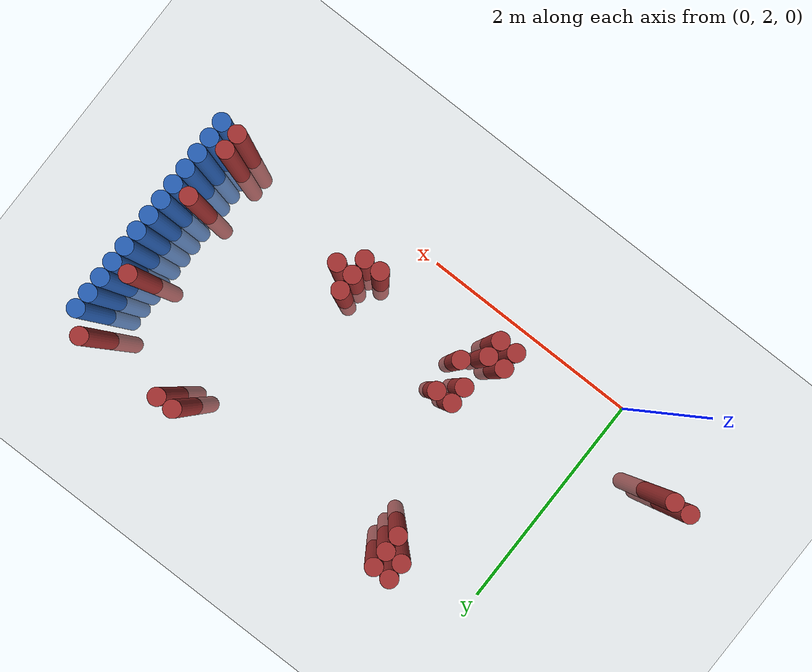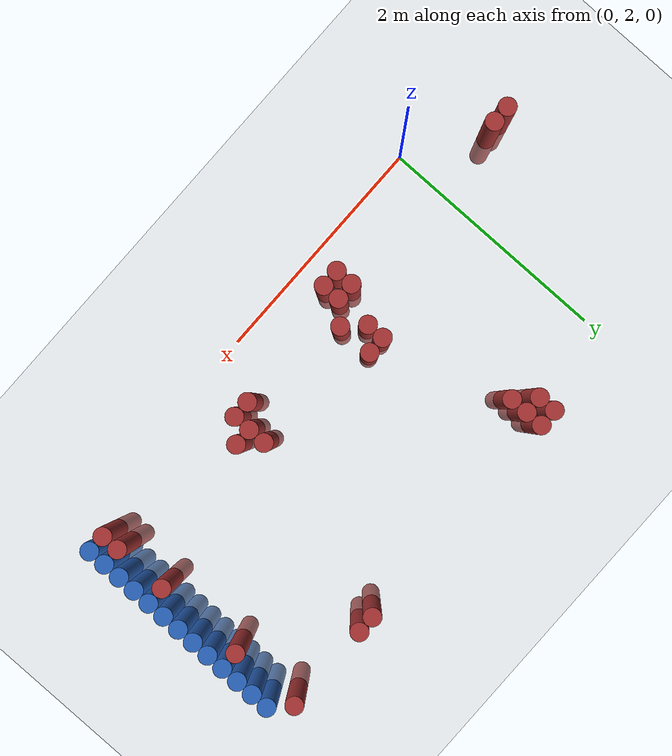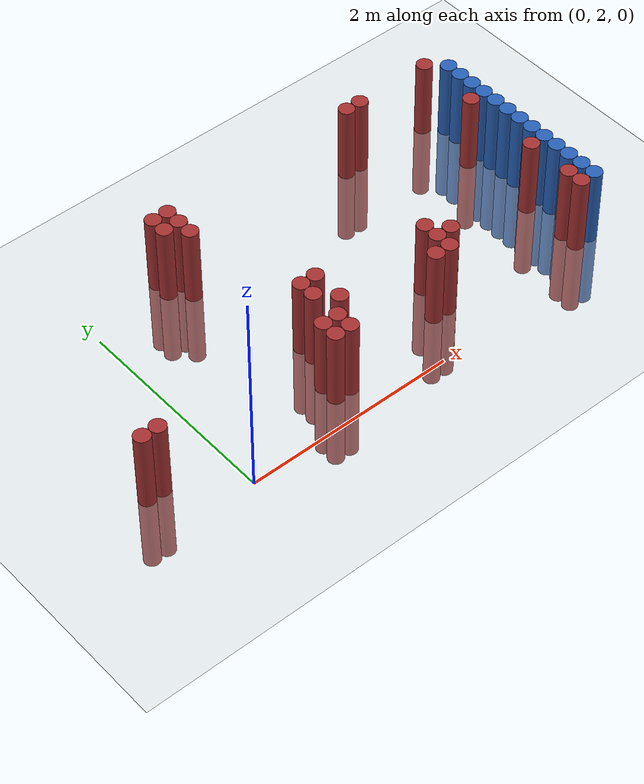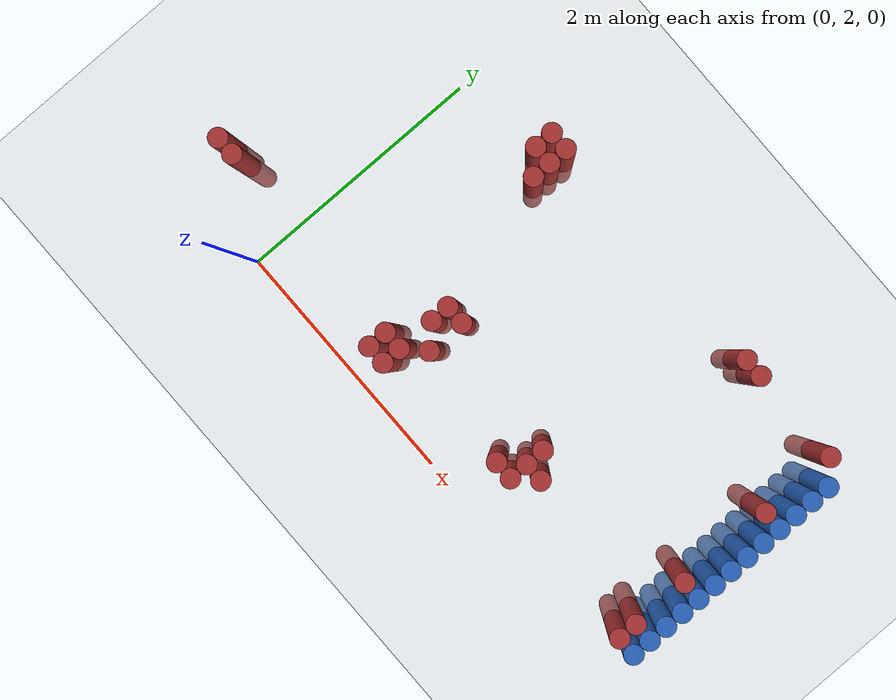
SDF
<sdf version="1.6">
 <world name="default">
  <model name="ground_plane">
   <static>1</static>
   <link name="link">
    <collision name="collision">
     <geometry><plane><normal>0 0 1</normal><size>100 100</size></plane></geometry>
     <surface><friction><ode><mu>100</mu><mu2>50</mu2></ode></friction></surface>
    </collision>
    <visual name="visual">
     <cast_shadows>0</cast_shadows>
     <geometry><plane><normal>0 0 1</normal><size>100 100</size></plane></geometry>
     <material>
      <script><uri>file://media/materials/scripts/gazebo.material</uri><name>Gazebo/Grey</name></script>
     </material>
    </visual>
   </link>
  </model>
  <model name="unit_cylinder_144">
   <static>1</static>
   <pose>3.925000 2.275000 0.000000 0.000000 0.000000 0.000000</pose>
   <link name="link">
    <inertial>
     <mass>1</mass>
     <inertia><ixx>0.145833</ixx><ixy>0</ixy><ixz>0</ixz><iyy>0.145833</iyy><iyz>0</iyz><izz>0.125</izz></inertia>
    </inertial>
    <collision name="collision">
     <geometry><cylinder><radius>0.075000</radius><length>1.5</length></cylinder></geometry>
    </collision>
    <visual name="visual">
     <geometry><cylinder><radius>0.075000</radius><length>1.5</length></cylinder></geometry>
     <material>
      <ambient>0.152000 0.379000 0.720000 1</ambient>
      <diffuse>0.152000 0.379000 0.720000 1</diffuse>
     </material>
     <material>
      <script><name>Gazebo/Grey</name><uri>file://media/materials/scripts/gazebo.material</uri></script>
     </material>
    </visual>
   </link>
  </model>
  <model name="unit_cylinder_146">
   <static>1</static>
   <pose>3.925000 2.425000 0.000000 0.000000 0.000000 0.000000</pose>
   <link name="link">
    <inertial>
     <mass>1</mass>
     <inertia><ixx>0.145833</ixx><ixy>0</ixy><ixz>0</ixz><iyy>0.145833</iyy><iyz>0</iyz><izz>0.125</izz></inertia>
    </inertial>
    <collision name="collision">
     <geometry><cylinder><radius>0.075000</radius><length>1.5</length></cylinder></geometry>
    </collision>
    <visual name="visual">
     <geometry><cylinder><radius>0.075000</radius><length>1.5</length></cylinder></geometry>
     <material>
      <ambient>0.152000 0.379000 0.720000 1</ambient>
      <diffuse>0.152000 0.379000 0.720000 1</diffuse>
     </material>
     <material>
      <script><name>Gazebo/Grey</name><uri>file://media/materials/scripts/gazebo.material</uri></script>
     </material>
    </visual>
   </link>
  </model>
  <model name="unit_cylinder_148">
   <static>1</static>
   <pose>3.925000 2.575000 0.000000 0.000000 0.000000 0.000000</pose>
   <link name="link">
    <inertial>
     <mass>1</mass>
     <inertia><ixx>0.145833</ixx><ixy>0</ixy><ixz>0</ixz><iyy>0.145833</iyy><iyz>0</iyz><izz>0.125</izz></inertia>
    </inertial>
    <collision name="collision">
     <geometry><cylinder><radius>0.075000</radius><length>1.5</length></cylinder></geometry>
    </collision>
    <visual name="visual">
     <geometry><cylinder><radius>0.075000</radius><length>1.5</length></cylinder></geometry>
     <material>
      <ambient>0.152000 0.379000 0.720000 1</ambient>
      <diffuse>0.152000 0.379000 0.720000 1</diffuse>
     </material>
     <material>
      <script><name>Gazebo/Grey</name><uri>file://media/materials/scripts/gazebo.material</uri></script>
     </material>
    </visual>
   </link>
  </model>
  <model name="unit_cylinder_150">
   <static>1</static>
   <pose>3.925000 2.725000 0.000000 0.000000 0.000000 0.000000</pose>
   <link name="link">
    <inertial>
     <mass>1</mass>
     <inertia><ixx>0.145833</ixx><ixy>0</ixy><ixz>0</ixz><iyy>0.145833</iyy><iyz>0</iyz><izz>0.125</izz></inertia>
    </inertial>
    <collision name="collision">
     <geometry><cylinder><radius>0.075000</radius><length>1.5</length></cylinder></geometry>
    </collision>
    <visual name="visual">
     <geometry><cylinder><radius>0.075000</radius><length>1.5</length></cylinder></geometry>
     <material>
      <ambient>0.152000 0.379000 0.720000 1</ambient>
      <diffuse>0.152000 0.379000 0.720000 1</diffuse>
     </material>
     <material>
      <script><name>Gazebo/Grey</name><uri>file://media/materials/scripts/gazebo.material</uri></script>
     </material>
    </visual>
   </link>
  </model>
  <model name="unit_cylinder_152">
   <static>1</static>
   <pose>3.925000 2.875000 0.000000 0.000000 0.000000 0.000000</pose>
   <link name="link">
    <inertial>
     <mass>1</mass>
     <inertia><ixx>0.145833</ixx><ixy>0</ixy><ixz>0</ixz><iyy>0.145833</iyy><iyz>0</iyz><izz>0.125</izz></inertia>
    </inertial>
    <collision name="collision">
     <geometry><cylinder><radius>0.075000</radius><length>1.5</length></cylinder></geometry>
    </collision>
    <visual name="visual">
     <geometry><cylinder><radius>0.075000</radius><length>1.5</length></cylinder></geometry>
     <material>
      <ambient>0.152000 0.379000 0.720000 1</ambient>
      <diffuse>0.152000 0.379000 0.720000 1</diffuse>
     </material>
     <material>
      <script><name>Gazebo/Grey</name><uri>file://media/materials/scripts/gazebo.material</uri></script>
     </material>
    </visual>
   </link>
  </model>
  <model name="unit_cylinder_154">
   <static>1</static>
   <pose>3.925000 3.025000 0.000000 0.000000 0.000000 0.000000</pose>
   <link name="link">
    <inertial>
     <mass>1</mass>
     <inertia><ixx>0.145833</ixx><ixy>0</ixy><ixz>0</ixz><iyy>0.145833</iyy><iyz>0</iyz><izz>0.125</izz></inertia>
    </inertial>
    <collision name="collision">
     <geometry><cylinder><radius>0.075000</radius><length>1.5</length></cylinder></geometry>
    </collision>
    <visual name="visual">
     <geometry><cylinder><radius>0.075000</radius><length>1.5</length></cylinder></geometry>
     <material>
      <ambient>0.152000 0.379000 0.720000 1</ambient>
      <diffuse>0.152000 0.379000 0.720000 1</diffuse>
     </material>
     <material>
      <script><name>Gazebo/Grey</name><uri>file://media/materials/scripts/gazebo.material</uri></script>
     </material>
    </visual>
   </link>
  </model>
  <model name="unit_cylinder_156">
   <static>1</static>
   <pose>3.925000 3.175000 0.000000 0.000000 0.000000 0.000000</pose>
   <link name="link">
    <inertial>
     <mass>1</mass>
     <inertia><ixx>0.145833</ixx><ixy>0</ixy><ixz>0</ixz><iyy>0.145833</iyy><iyz>0</iyz><izz>0.125</izz></inertia>
    </inertial>
    <collision name="collision">
     <geometry><cylinder><radius>0.075000</radius><length>1.5</length></cylinder></geometry>
    </collision>
    <visual name="visual">
     <geometry><cylinder><radius>0.075000</radius><length>1.5</length></cylinder></geometry>
     <material>
      <ambient>0.152000 0.379000 0.720000 1</ambient>
      <diffuse>0.152000 0.379000 0.720000 1</diffuse>
     </material>
     <material>
      <script><name>Gazebo/Grey</name><uri>file://media/materials/scripts/gazebo.material</uri></script>
     </material>
    </visual>
   </link>
  </model>
  <model name="unit_cylinder_158">
   <static>1</static>
   <pose>3.925000 3.325000 0.000000 0.000000 0.000000 0.000000</pose>
   <link name="link">
    <inertial>
     <mass>1</mass>
     <inertia><ixx>0.145833</ixx><ixy>0</ixy><ixz>0</ixz><iyy>0.145833</iyy><iyz>0</iyz><izz>0.125</izz></inertia>
    </inertial>
    <collision name="collision">
     <geometry><cylinder><radius>0.075000</radius><length>1.5</length></cylinder></geometry>
    </collision>
    <visual name="visual">
     <geometry><cylinder><radius>0.075000</radius><length>1.5</length></cylinder></geometry>
     <material>
      <ambient>0.152000 0.379000 0.720000 1</ambient>
      <diffuse>0.152000 0.379000 0.720000 1</diffuse>
     </material>
     <material>
      <script><name>Gazebo/Grey</name><uri>file://media/materials/scripts/gazebo.material</uri></script>
     </material>
    </visual>
   </link>
  </model>
  <model name="unit_cylinder_160">
   <static>1</static>
   <pose>3.925000 3.475000 0.000000 0.000000 0.000000 0.000000</pose>
   <link name="link">
    <inertial>
     <mass>1</mass>
     <inertia><ixx>0.145833</ixx><ixy>0</ixy><ixz>0</ixz><iyy>0.145833</iyy><iyz>0</iyz><izz>0.125</izz></inertia>
    </inertial>
    <collision name="collision">
     <geometry><cylinder><radius>0.075000</radius><length>1.5</length></cylinder></geometry>
    </collision>
    <visual name="visual">
     <geometry><cylinder><radius>0.075000</radius><length>1.5</length></cylinder></geometry>
     <material>
      <ambient>0.152000 0.379000 0.720000 1</ambient>
      <diffuse>0.152000 0.379000 0.720000 1</diffuse>
     </material>
     <material>
      <script><name>Gazebo/Grey</name><uri>file://media/materials/scripts/gazebo.material</uri></script>
     </material>
    </visual>
   </link>
  </model>
  <model name="unit_cylinder_162">
   <static>1</static>
   <pose>3.925000 3.625000 0.000000 0.000000 0.000000 0.000000</pose>
   <link name="link">
    <inertial>
     <mass>1</mass>
     <inertia><ixx>0.145833</ixx><ixy>0</ixy><ixz>0</ixz><iyy>0.145833</iyy><iyz>0</iyz><izz>0.125</izz></inertia>
    </inertial>
    <collision name="collision">
     <geometry><cylinder><radius>0.075000</radius><length>1.5</length></cylinder></geometry>
    </collision>
    <visual name="visual">
     <geometry><cylinder><radius>0.075000</radius><length>1.5</length></cylinder></geometry>
     <material>
      <ambient>0.152000 0.379000 0.720000 1</ambient>
      <diffuse>0.152000 0.379000 0.720000 1</diffuse>
     </material>
     <material>
      <script><name>Gazebo/Grey</name><uri>file://media/materials/scripts/gazebo.material</uri></script>
     </material>
    </visual>
   </link>
  </model>
  <model name="unit_cylinder_164">
   <static>1</static>
   <pose>3.925000 3.775000 0.000000 0.000000 0.000000 0.000000</pose>
   <link name="link">
    <inertial>
     <mass>1</mass>
     <inertia><ixx>0.145833</ixx><ixy>0</ixy><ixz>0</ixz><iyy>0.145833</iyy><iyz>0</iyz><izz>0.125</izz></inertia>
    </inertial>
    <collision name="collision">
     <geometry><cylinder><radius>0.075000</radius><length>1.5</length></cylinder></geometry>
    </collision>
    <visual name="visual">
     <geometry><cylinder><radius>0.075000</radius><length>1.5</length></cylinder></geometry>
     <material>
      <ambient>0.152000 0.379000 0.720000 1</ambient>
      <diffuse>0.152000 0.379000 0.720000 1</diffuse>
     </material>
     <material>
      <script><name>Gazebo/Grey</name><uri>file://media/materials/scripts/gazebo.material</uri></script>
     </material>
    </visual>
   </link>
  </model>
  <model name="unit_cylinder_166">
   <static>1</static>
   <pose>3.925000 3.925000 0.000000 0.000000 0.000000 0.000000</pose>
   <link name="link">
    <inertial>
     <mass>1</mass>
     <inertia><ixx>0.145833</ixx><ixy>0</ixy><ixz>0</ixz><iyy>0.145833</iyy><iyz>0</iyz><izz>0.125</izz></inertia>
    </inertial>
    <collision name="collision">
     <geometry><cylinder><radius>0.075000</radius><length>1.5</length></cylinder></geometry>
    </collision>
    <visual name="visual">
     <geometry><cylinder><radius>0.075000</radius><length>1.5</length></cylinder></geometry>
     <material>
      <ambient>0.152000 0.379000 0.720000 1</ambient>
      <diffuse>0.152000 0.379000 0.720000 1</diffuse>
     </material>
     <material>
      <script><name>Gazebo/Grey</name><uri>file://media/materials/scripts/gazebo.material</uri></script>
     </material>
    </visual>
   </link>
  </model>
  <model name="unit_cylinder_168">
   <static>1</static>
   <pose>3.925000 4.075000 0.000000 0.000000 0.000000 0.000000</pose>
   <link name="link">
    <inertial>
     <mass>1</mass>
     <inertia><ixx>0.145833</ixx><ixy>0</ixy><ixz>0</ixz><iyy>0.145833</iyy><iyz>0</iyz><izz>0.125</izz></inertia>
    </inertial>
    <collision name="collision">
     <geometry><cylinder><radius>0.075000</radius><length>1.5</length></cylinder></geometry>
    </collision>
    <visual name="visual">
     <geometry><cylinder><radius>0.075000</radius><length>1.5</length></cylinder></geometry>
     <material>
      <ambient>0.152000 0.379000 0.720000 1</ambient>
      <diffuse>0.152000 0.379000 0.720000 1</diffuse>
     </material>
     <material>
      <script><name>Gazebo/Grey</name><uri>file://media/materials/scripts/gazebo.material</uri></script>
     </material>
    </visual>
   </link>
  </model>
  <model name="unit_cylinder_328">
   <static>1</static>
   <pose>-0.725000 2.425000 0.000000 0.000000 0.000000 0.000000</pose>
   <link name="link">
    <inertial>
     <mass>1</mass>
     <inertia><ixx>0.145833</ixx><ixy>0</ixy><ixz>0</ixz><iyy>0.145833</iyy><iyz>0</iyz><izz>0.125</izz></inertia>
    </inertial>
    <collision name="collision">
     <geometry><cylinder><radius>0.075000</radius><length>1.5</length></cylinder></geometry>
    </collision>
    <visual name="visual">
     <geometry><cylinder><radius>0.075000</radius><length>1.5</length></cylinder></geometry>
     <material>
      <ambient>0.648000 0.192000 0.192000 1</ambient>
      <diffuse>0.648000 0.192000 0.192000 1</diffuse>
     </material>
     <material>
      <script><name>Gazebo/Grey</name><uri>file://media/materials/scripts/gazebo.material</uri></script>
     </material>
    </visual>
   </link>
  </model>
  <model name="unit_cylinder_336">
   <static>1</static>
   <pose>-0.575000 2.425000 0.000000 0.000000 0.000000 0.000000</pose>
   <link name="link">
    <inertial>
     <mass>1</mass>
     <inertia><ixx>0.145833</ixx><ixy>0</ixy><ixz>0</ixz><iyy>0.145833</iyy><iyz>0</iyz><izz>0.125</izz></inertia>
    </inertial>
    <collision name="collision">
     <geometry><cylinder><radius>0.075000</radius><length>1.5</length></cylinder></geometry>
    </collision>
    <visual name="visual">
     <geometry><cylinder><radius>0.075000</radius><length>1.5</length></cylinder></geometry>
     <material>
      <ambient>0.648000 0.192000 0.192000 1</ambient>
      <diffuse>0.648000 0.192000 0.192000 1</diffuse>
     </material>
     <material>
      <script><name>Gazebo/Grey</name><uri>file://media/materials/scripts/gazebo.material</uri></script>
     </material>
    </visual>
   </link>
  </model>
  <model name="unit_cylinder_380">
   <static>1</static>
   <pose>0.775000 4.075000 0.000000 0.000000 0.000000 0.000000</pose>
   <link name="link">
    <inertial>
     <mass>1</mass>
     <inertia><ixx>0.145833</ixx><ixy>0</ixy><ixz>0</ixz><iyy>0.145833</iyy><iyz>0</iyz><izz>0.125</izz></inertia>
    </inertial>
    <collision name="collision">
     <geometry><cylinder><radius>0.075000</radius><length>1.5</length></cylinder></geometry>
    </collision>
    <visual name="visual">
     <geometry><cylinder><radius>0.075000</radius><length>1.5</length></cylinder></geometry>
     <material>
      <ambient>0.648000 0.192000 0.192000 1</ambient>
      <diffuse>0.648000 0.192000 0.192000 1</diffuse>
     </material>
     <material>
      <script><name>Gazebo/Grey</name><uri>file://media/materials/scripts/gazebo.material</uri></script>
     </material>
    </visual>
   </link>
  </model>
  <model name="unit_cylinder_381">
   <static>1</static>
   <pose>0.775000 4.225000 0.000000 0.000000 0.000000 0.000000</pose>
   <link name="link">
    <inertial>
     <mass>1</mass>
     <inertia><ixx>0.145833</ixx><ixy>0</ixy><ixz>0</ixz><iyy>0.145833</iyy><iyz>0</iyz><izz>0.125</izz></inertia>
    </inertial>
    <collision name="collision">
     <geometry><cylinder><radius>0.075000</radius><length>1.5</length></cylinder></geometry>
    </collision>
    <visual name="visual">
     <geometry><cylinder><radius>0.075000</radius><length>1.5</length></cylinder></geometry>
     <material>
      <ambient>0.648000 0.192000 0.192000 1</ambient>
      <diffuse>0.648000 0.192000 0.192000 1</diffuse>
     </material>
     <material>
      <script><name>Gazebo/Grey</name><uri>file://media/materials/scripts/gazebo.material</uri></script>
     </material>
    </visual>
   </link>
  </model>
  <model name="unit_cylinder_388">
   <static>1</static>
   <pose>0.925000 3.925000 0.000000 0.000000 0.000000 0.000000</pose>
   <link name="link">
    <inertial>
     <mass>1</mass>
     <inertia><ixx>0.145833</ixx><ixy>0</ixy><ixz>0</ixz><iyy>0.145833</iyy><iyz>0</iyz><izz>0.125</izz></inertia>
    </inertial>
    <collision name="collision">
     <geometry><cylinder><radius>0.075000</radius><length>1.5</length></cylinder></geometry>
    </collision>
    <visual name="visual">
     <geometry><cylinder><radius>0.075000</radius><length>1.5</length></cylinder></geometry>
     <material>
      <ambient>0.648000 0.192000 0.192000 1</ambient>
      <diffuse>0.648000 0.192000 0.192000 1</diffuse>
     </material>
     <material>
      <script><name>Gazebo/Grey</name><uri>file://media/materials/scripts/gazebo.material</uri></script>
     </material>
    </visual>
   </link>
  </model>
  <model name="unit_cylinder_389">
   <static>1</static>
   <pose>0.925000 4.075000 0.000000 0.000000 0.000000 0.000000</pose>
   <link name="link">
    <inertial>
     <mass>1</mass>
     <inertia><ixx>0.145833</ixx><ixy>0</ixy><ixz>0</ixz><iyy>0.145833</iyy><iyz>0</iyz><izz>0.125</izz></inertia>
    </inertial>
    <collision name="collision">
     <geometry><cylinder><radius>0.075000</radius><length>1.5</length></cylinder></geometry>
    </collision>
    <visual name="visual">
     <geometry><cylinder><radius>0.075000</radius><length>1.5</length></cylinder></geometry>
     <material>
      <ambient>0.648000 0.192000 0.192000 1</ambient>
      <diffuse>0.648000 0.192000 0.192000 1</diffuse>
     </material>
     <material>
      <script><name>Gazebo/Grey</name><uri>file://media/materials/scripts/gazebo.material</uri></script>
     </material>
    </visual>
   </link>
  </model>
  <model name="unit_cylinder_390">
   <static>1</static>
   <pose>0.925000 4.225000 0.000000 0.000000 0.000000 0.000000</pose>
   <link name="link">
    <inertial>
     <mass>1</mass>
     <inertia><ixx>0.145833</ixx><ixy>0</ixy><ixz>0</ixz><iyy>0.145833</iyy><iyz>0</iyz><izz>0.125</izz></inertia>
    </inertial>
    <collision name="collision">
     <geometry><cylinder><radius>0.075000</radius><length>1.5</length></cylinder></geometry>
    </collision>
    <visual name="visual">
     <geometry><cylinder><radius>0.075000</radius><length>1.5</length></cylinder></geometry>
     <material>
      <ambient>0.648000 0.192000 0.192000 1</ambient>
      <diffuse>0.648000 0.192000 0.192000 1</diffuse>
     </material>
     <material>
      <script><name>Gazebo/Grey</name><uri>file://media/materials/scripts/gazebo.material</uri></script>
     </material>
    </visual>
   </link>
  </model>
  <model name="unit_cylinder_395">
   <static>1</static>
   <pose>1.075000 2.275000 0.000000 0.000000 0.000000 0.000000</pose>
   <link name="link">
    <inertial>
     <mass>1</mass>
     <inertia><ixx>0.145833</ixx><ixy>0</ixy><ixz>0</ixz><iyy>0.145833</iyy><iyz>0</iyz><izz>0.125</izz></inertia>
    </inertial>
    <collision name="collision">
     <geometry><cylinder><radius>0.075000</radius><length>1.5</length></cylinder></geometry>
    </collision>
    <visual name="visual">
     <geometry><cylinder><radius>0.075000</radius><length>1.5</length></cylinder></geometry>
     <material>
      <ambient>0.648000 0.192000 0.192000 1</ambient>
      <diffuse>0.648000 0.192000 0.192000 1</diffuse>
     </material>
     <material>
      <script><name>Gazebo/Grey</name><uri>file://media/materials/scripts/gazebo.material</uri></script>
     </material>
    </visual>
   </link>
  </model>
  <model name="unit_cylinder_396">
   <static>1</static>
   <pose>1.075000 2.425000 0.000000 0.000000 0.000000 0.000000</pose>
   <link name="link">
    <inertial>
     <mass>1</mass>
     <inertia><ixx>0.145833</ixx><ixy>0</ixy><ixz>0</ixz><iyy>0.145833</iyy><iyz>0</iyz><izz>0.125</izz></inertia>
    </inertial>
    <collision name="collision">
     <geometry><cylinder><radius>0.075000</radius><length>1.5</length></cylinder></geometry>
    </collision>
    <visual name="visual">
     <geometry><cylinder><radius>0.075000</radius><length>1.5</length></cylinder></geometry>
     <material>
      <ambient>0.648000 0.192000 0.192000 1</ambient>
      <diffuse>0.648000 0.192000 0.192000 1</diffuse>
     </material>
     <material>
      <script><name>Gazebo/Grey</name><uri>file://media/materials/scripts/gazebo.material</uri></script>
     </material>
    </visual>
   </link>
  </model>
  <model name="unit_cylinder_398">
   <static>1</static>
   <pose>1.225000 2.275000 0.000000 0.000000 0.000000 0.000000</pose>
   <link name="link">
    <inertial>
     <mass>1</mass>
     <inertia><ixx>0.145833</ixx><ixy>0</ixy><ixz>0</ixz><iyy>0.145833</iyy><iyz>0</iyz><izz>0.125</izz></inertia>
    </inertial>
    <collision name="collision">
     <geometry><cylinder><radius>0.075000</radius><length>1.5</length></cylinder></geometry>
    </collision>
    <visual name="visual">
     <geometry><cylinder><radius>0.075000</radius><length>1.5</length></cylinder></geometry>
     <material>
      <ambient>0.648000 0.192000 0.192000 1</ambient>
      <diffuse>0.648000 0.192000 0.192000 1</diffuse>
     </material>
     <material>
      <script><name>Gazebo/Grey</name><uri>file://media/materials/scripts/gazebo.material</uri></script>
     </material>
    </visual>
   </link>
  </model>
  <model name="unit_cylinder_399">
   <static>1</static>
   <pose>1.225000 2.425000 0.000000 0.000000 0.000000 0.000000</pose>
   <link name="link">
    <inertial>
     <mass>1</mass>
     <inertia><ixx>0.145833</ixx><ixy>0</ixy><ixz>0</ixz><iyy>0.145833</iyy><iyz>0</iyz><izz>0.125</izz></inertia>
    </inertial>
    <collision name="collision">
     <geometry><cylinder><radius>0.075000</radius><length>1.5</length></cylinder></geometry>
    </collision>
    <visual name="visual">
     <geometry><cylinder><radius>0.075000</radius><length>1.5</length></cylinder></geometry>
     <material>
      <ambient>0.648000 0.192000 0.192000 1</ambient>
      <diffuse>0.648000 0.192000 0.192000 1</diffuse>
     </material>
     <material>
      <script><name>Gazebo/Grey</name><uri>file://media/materials/scripts/gazebo.material</uri></script>
     </material>
    </visual>
   </link>
  </model>
  <model name="unit_cylinder_400">
   <static>1</static>
   <pose>1.225000 2.725000 0.000000 0.000000 0.000000 0.000000</pose>
   <link name="link">
    <inertial>
     <mass>1</mass>
     <inertia><ixx>0.145833</ixx><ixy>0</ixy><ixz>0</ixz><iyy>0.145833</iyy><iyz>0</iyz><izz>0.125</izz></inertia>
    </inertial>
    <collision name="collision">
     <geometry><cylinder><radius>0.075000</radius><length>1.5</length></cylinder></geometry>
    </collision>
    <visual name="visual">
     <geometry><cylinder><radius>0.075000</radius><length>1.5</length></cylinder></geometry>
     <material>
      <ambient>0.648000 0.192000 0.192000 1</ambient>
      <diffuse>0.648000 0.192000 0.192000 1</diffuse>
     </material>
     <material>
      <script><name>Gazebo/Grey</name><uri>file://media/materials/scripts/gazebo.material</uri></script>
     </material>
    </visual>
   </link>
  </model>
  <model name="unit_cylinder_401">
   <static>1</static>
   <pose>1.225000 2.875000 0.000000 0.000000 0.000000 0.000000</pose>
   <link name="link">
    <inertial>
     <mass>1</mass>
     <inertia><ixx>0.145833</ixx><ixy>0</ixy><ixz>0</ixz><iyy>0.145833</iyy><iyz>0</iyz><izz>0.125</izz></inertia>
    </inertial>
    <collision name="collision">
     <geometry><cylinder><radius>0.075000</radius><length>1.5</length></cylinder></geometry>
    </collision>
    <visual name="visual">
     <geometry><cylinder><radius>0.075000</radius><length>1.5</length></cylinder></geometry>
     <material>
      <ambient>0.648000 0.192000 0.192000 1</ambient>
      <diffuse>0.648000 0.192000 0.192000 1</diffuse>
     </material>
     <material>
      <script><name>Gazebo/Grey</name><uri>file://media/materials/scripts/gazebo.material</uri></script>
     </material>
    </visual>
   </link>
  </model>
  <model name="unit_cylinder_404">
   <static>1</static>
   <pose>1.375000 2.575000 0.000000 0.000000 0.000000 0.000000</pose>
   <link name="link">
    <inertial>
     <mass>1</mass>
     <inertia><ixx>0.145833</ixx><ixy>0</ixy><ixz>0</ixz><iyy>0.145833</iyy><iyz>0</iyz><izz>0.125</izz></inertia>
    </inertial>
    <collision name="collision">
     <geometry><cylinder><radius>0.075000</radius><length>1.5</length></cylinder></geometry>
    </collision>
    <visual name="visual">
     <geometry><cylinder><radius>0.075000</radius><length>1.5</length></cylinder></geometry>
     <material>
      <ambient>0.648000 0.192000 0.192000 1</ambient>
      <diffuse>0.648000 0.192000 0.192000 1</diffuse>
     </material>
     <material>
      <script><name>Gazebo/Grey</name><uri>file://media/materials/scripts/gazebo.material</uri></script>
     </material>
    </visual>
   </link>
  </model>
  <model name="unit_cylinder_405">
   <static>1</static>
   <pose>1.375000 2.875000 0.000000 0.000000 0.000000 0.000000</pose>
   <link name="link">
    <inertial>
     <mass>1</mass>
     <inertia><ixx>0.145833</ixx><ixy>0</ixy><ixz>0</ixz><iyy>0.145833</iyy><iyz>0</iyz><izz>0.125</izz></inertia>
    </inertial>
    <collision name="collision">
     <geometry><cylinder><radius>0.075000</radius><length>1.5</length></cylinder></geometry>
    </collision>
    <visual name="visual">
     <geometry><cylinder><radius>0.075000</radius><length>1.5</length></cylinder></geometry>
     <material>
      <ambient>0.648000 0.192000 0.192000 1</ambient>
      <diffuse>0.648000 0.192000 0.192000 1</diffuse>
     </material>
     <material>
      <script><name>Gazebo/Grey</name><uri>file://media/materials/scripts/gazebo.material</uri></script>
     </material>
    </visual>
   </link>
  </model>
  <model name="unit_cylinder_420">
   <static>1</static>
   <pose>2.275000 2.425000 0.000000 0.000000 0.000000 0.000000</pose>
   <link name="link">
    <inertial>
     <mass>1</mass>
     <inertia><ixx>0.145833</ixx><ixy>0</ixy><ixz>0</ixz><iyy>0.145833</iyy><iyz>0</iyz><izz>0.125</izz></inertia>
    </inertial>
    <collision name="collision">
     <geometry><cylinder><radius>0.075000</radius><length>1.5</length></cylinder></geometry>
    </collision>
    <visual name="visual">
     <geometry><cylinder><radius>0.075000</radius><length>1.5</length></cylinder></geometry>
     <material>
      <ambient>0.648000 0.192000 0.192000 1</ambient>
      <diffuse>0.648000 0.192000 0.192000 1</diffuse>
     </material>
     <material>
      <script><name>Gazebo/Grey</name><uri>file://media/materials/scripts/gazebo.material</uri></script>
     </material>
    </visual>
   </link>
  </model>
  <model name="unit_cylinder_423">
   <static>1</static>
   <pose>2.425000 2.425000 0.000000 0.000000 0.000000 0.000000</pose>
   <link name="link">
    <inertial>
     <mass>1</mass>
     <inertia><ixx>0.145833</ixx><ixy>0</ixy><ixz>0</ixz><iyy>0.145833</iyy><iyz>0</iyz><izz>0.125</izz></inertia>
    </inertial>
    <collision name="collision">
     <geometry><cylinder><radius>0.075000</radius><length>1.5</length></cylinder></geometry>
    </collision>
    <visual name="visual">
     <geometry><cylinder><radius>0.075000</radius><length>1.5</length></cylinder></geometry>
     <material>
      <ambient>0.648000 0.192000 0.192000 1</ambient>
      <diffuse>0.648000 0.192000 0.192000 1</diffuse>
     </material>
     <material>
      <script><name>Gazebo/Grey</name><uri>file://media/materials/scripts/gazebo.material</uri></script>
     </material>
    </visual>
   </link>
  </model>
  <model name="unit_cylinder_424">
   <static>1</static>
   <pose>2.425000 2.575000 0.000000 0.000000 0.000000 0.000000</pose>
   <link name="link">
    <inertial>
     <mass>1</mass>
     <inertia><ixx>0.145833</ixx><ixy>0</ixy><ixz>0</ixz><iyy>0.145833</iyy><iyz>0</iyz><izz>0.125</izz></inertia>
    </inertial>
    <collision name="collision">
     <geometry><cylinder><radius>0.075000</radius><length>1.5</length></cylinder></geometry>
    </collision>
    <visual name="visual">
     <geometry><cylinder><radius>0.075000</radius><length>1.5</length></cylinder></geometry>
     <material>
      <ambient>0.648000 0.192000 0.192000 1</ambient>
      <diffuse>0.648000 0.192000 0.192000 1</diffuse>
     </material>
     <material>
      <script><name>Gazebo/Grey</name><uri>file://media/materials/scripts/gazebo.material</uri></script>
     </material>
    </visual>
   </link>
  </model>
  <model name="unit_cylinder_425">
   <static>1</static>
   <pose>2.425000 2.725000 0.000000 0.000000 0.000000 0.000000</pose>
   <link name="link">
    <inertial>
     <mass>1</mass>
     <inertia><ixx>0.145833</ixx><ixy>0</ixy><ixz>0</ixz><iyy>0.145833</iyy><iyz>0</iyz><izz>0.125</izz></inertia>
    </inertial>
    <collision name="collision">
     <geometry><cylinder><radius>0.075000</radius><length>1.5</length></cylinder></geometry>
    </collision>
    <visual name="visual">
     <geometry><cylinder><radius>0.075000</radius><length>1.5</length></cylinder></geometry>
     <material>
      <ambient>0.648000 0.192000 0.192000 1</ambient>
      <diffuse>0.648000 0.192000 0.192000 1</diffuse>
     </material>
     <material>
      <script><name>Gazebo/Grey</name><uri>file://media/materials/scripts/gazebo.material</uri></script>
     </material>
    </visual>
   </link>
  </model>
  <model name="unit_cylinder_429">
   <static>1</static>
   <pose>2.575000 2.575000 0.000000 0.000000 0.000000 0.000000</pose>
   <link name="link">
    <inertial>
     <mass>1</mass>
     <inertia><ixx>0.145833</ixx><ixy>0</ixy><ixz>0</ixz><iyy>0.145833</iyy><iyz>0</iyz><izz>0.125</izz></inertia>
    </inertial>
    <collision name="collision">
     <geometry><cylinder><radius>0.075000</radius><length>1.5</length></cylinder></geometry>
    </collision>
    <visual name="visual">
     <geometry><cylinder><radius>0.075000</radius><length>1.5</length></cylinder></geometry>
     <material>
      <ambient>0.648000 0.192000 0.192000 1</ambient>
      <diffuse>0.648000 0.192000 0.192000 1</diffuse>
     </material>
     <material>
      <script><name>Gazebo/Grey</name><uri>file://media/materials/scripts/gazebo.material</uri></script>
     </material>
    </visual>
   </link>
  </model>
  <model name="unit_cylinder_436">
   <static>1</static>
   <pose>2.875000 4.225000 0.000000 0.000000 0.000000 0.000000</pose>
   <link name="link">
    <inertial>
     <mass>1</mass>
     <inertia><ixx>0.145833</ixx><ixy>0</ixy><ixz>0</ixz><iyy>0.145833</iyy><iyz>0</iyz><izz>0.125</izz></inertia>
    </inertial>
    <collision name="collision">
     <geometry><cylinder><radius>0.075000</radius><length>1.5</length></cylinder></geometry>
    </collision>
    <visual name="visual">
     <geometry><cylinder><radius>0.075000</radius><length>1.5</length></cylinder></geometry>
     <material>
      <ambient>0.648000 0.192000 0.192000 1</ambient>
      <diffuse>0.648000 0.192000 0.192000 1</diffuse>
     </material>
     <material>
      <script><name>Gazebo/Grey</name><uri>file://media/materials/scripts/gazebo.material</uri></script>
     </material>
    </visual>
   </link>
  </model>
  <model name="unit_cylinder_441">
   <static>1</static>
   <pose>3.025000 4.225000 0.000000 0.000000 0.000000 0.000000</pose>
   <link name="link">
    <inertial>
     <mass>1</mass>
     <inertia><ixx>0.145833</ixx><ixy>0</ixy><ixz>0</ixz><iyy>0.145833</iyy><iyz>0</iyz><izz>0.125</izz></inertia>
    </inertial>
    <collision name="collision">
     <geometry><cylinder><radius>0.075000</radius><length>1.5</length></cylinder></geometry>
    </collision>
    <visual name="visual">
     <geometry><cylinder><radius>0.075000</radius><length>1.5</length></cylinder></geometry>
     <material>
      <ambient>0.648000 0.192000 0.192000 1</ambient>
      <diffuse>0.648000 0.192000 0.192000 1</diffuse>
     </material>
     <material>
      <script><name>Gazebo/Grey</name><uri>file://media/materials/scripts/gazebo.material</uri></script>
     </material>
    </visual>
   </link>
  </model>
  <model name="unit_cylinder_479">
   <static>1</static>
   <pose>3.775000 2.275000 0.000000 0.000000 0.000000 0.000000</pose>
   <link name="link">
    <inertial>
     <mass>1</mass>
     <inertia><ixx>0.145833</ixx><ixy>0</ixy><ixz>0</ixz><iyy>0.145833</iyy><iyz>0</iyz><izz>0.125</izz></inertia>
    </inertial>
    <collision name="collision">
     <geometry><cylinder><radius>0.075000</radius><length>1.5</length></cylinder></geometry>
    </collision>
    <visual name="visual">
     <geometry><cylinder><radius>0.075000</radius><length>1.5</length></cylinder></geometry>
     <material>
      <ambient>0.648000 0.192000 0.192000 1</ambient>
      <diffuse>0.648000 0.192000 0.192000 1</diffuse>
     </material>
     <material>
      <script><name>Gazebo/Grey</name><uri>file://media/materials/scripts/gazebo.material</uri></script>
     </material>
    </visual>
   </link>
  </model>
  <model name="unit_cylinder_480">
   <static>1</static>
   <pose>3.775000 2.425000 0.000000 0.000000 0.000000 0.000000</pose>
   <link name="link">
    <inertial>
     <mass>1</mass>
     <inertia><ixx>0.145833</ixx><ixy>0</ixy><ixz>0</ixz><iyy>0.145833</iyy><iyz>0</iyz><izz>0.125</izz></inertia>
    </inertial>
    <collision name="collision">
     <geometry><cylinder><radius>0.075000</radius><length>1.5</length></cylinder></geometry>
    </collision>
    <visual name="visual">
     <geometry><cylinder><radius>0.075000</radius><length>1.5</length></cylinder></geometry>
     <material>
      <ambient>0.648000 0.192000 0.192000 1</ambient>
      <diffuse>0.648000 0.192000 0.192000 1</diffuse>
     </material>
     <material>
      <script><name>Gazebo/Grey</name><uri>file://media/materials/scripts/gazebo.material</uri></script>
     </material>
    </visual>
   </link>
  </model>
  <model name="unit_cylinder_481">
   <static>1</static>
   <pose>3.775000 2.875000 0.000000 0.000000 0.000000 0.000000</pose>
   <link name="link">
    <inertial>
     <mass>1</mass>
     <inertia><ixx>0.145833</ixx><ixy>0</ixy><ixz>0</ixz><iyy>0.145833</iyy><iyz>0</iyz><izz>0.125</izz></inertia>
    </inertial>
    <collision name="collision">
     <geometry><cylinder><radius>0.075000</radius><length>1.5</length></cylinder></geometry>
    </collision>
    <visual name="visual">
     <geometry><cylinder><radius>0.075000</radius><length>1.5</length></cylinder></geometry>
     <material>
      <ambient>0.648000 0.192000 0.192000 1</ambient>
      <diffuse>0.648000 0.192000 0.192000 1</diffuse>
     </material>
     <material>
      <script><name>Gazebo/Grey</name><uri>file://media/materials/scripts/gazebo.material</uri></script>
     </material>
    </visual>
   </link>
  </model>
  <model name="unit_cylinder_482">
   <static>1</static>
   <pose>3.775000 3.625000 0.000000 0.000000 0.000000 0.000000</pose>
   <link name="link">
    <inertial>
     <mass>1</mass>
     <inertia><ixx>0.145833</ixx><ixy>0</ixy><ixz>0</ixz><iyy>0.145833</iyy><iyz>0</iyz><izz>0.125</izz></inertia>
    </inertial>
    <collision name="collision">
     <geometry><cylinder><radius>0.075000</radius><length>1.5</length></cylinder></geometry>
    </collision>
    <visual name="visual">
     <geometry><cylinder><radius>0.075000</radius><length>1.5</length></cylinder></geometry>
     <material>
      <ambient>0.648000 0.192000 0.192000 1</ambient>
      <diffuse>0.648000 0.192000 0.192000 1</diffuse>
     </material>
     <material>
      <script><name>Gazebo/Grey</name><uri>file://media/materials/scripts/gazebo.material</uri></script>
     </material>
    </visual>
   </link>
  </model>
  <model name="unit_cylinder_483">
   <static>1</static>
   <pose>3.775000 4.225000 0.000000 0.000000 0.000000 0.000000</pose>
   <link name="link">
    <inertial>
     <mass>1</mass>
     <inertia><ixx>0.145833</ixx><ixy>0</ixy><ixz>0</ixz><iyy>0.145833</iyy><iyz>0</iyz><izz>0.125</izz></inertia>
    </inertial>
    <collision name="collision">
     <geometry><cylinder><radius>0.075000</radius><length>1.5</length></cylinder></geometry>
    </collision>
    <visual name="visual">
     <geometry><cylinder><radius>0.075000</radius><length>1.5</length></cylinder></geometry>
     <material>
      <ambient>0.648000 0.192000 0.192000 1</ambient>
      <diffuse>0.648000 0.192000 0.192000 1</diffuse>
     </material>
     <material>
      <script><name>Gazebo/Grey</name><uri>file://media/materials/scripts/gazebo.material</uri></script>
     </material>
    </visual>
   </link>
  </model>
  <model name="unit_cylinder_514">
   <static>1</static>
   <pose>3.925000 2.275000 0.000000 0.000000 0.000000 0.000000</pose>
   <link name="link">
    <inertial>
     <mass>1</mass>
     <inertia><ixx>0.145833</ixx><ixy>0</ixy><ixz>0</ixz><iyy>0.145833</iyy><iyz>0</iyz><izz>0.125</izz></inertia>
    </inertial>
    <collision name="collision">
     <geometry><cylinder><radius>0.075000</radius><length>1.5</length></cylinder></geometry>
    </collision>
    <visual name="visual">
     <geometry><cylinder><radius>0.075000</radius><length>1.5</length></cylinder></geometry>
     <material>
      <ambient>0.152000 0.379000 0.720000 1</ambient>
      <diffuse>0.152000 0.379000 0.720000 1</diffuse>
     </material>
     <material>
      <script><name>Gazebo/Grey</name><uri>file://media/materials/scripts/gazebo.material</uri></script>
     </material>
    </visual>
   </link>
  </model>
  <model name="unit_cylinder_515">
   <static>1</static>
   <pose>3.925000 2.425000 0.000000 0.000000 0.000000 0.000000</pose>
   <link name="link">
    <inertial>
     <mass>1</mass>
     <inertia><ixx>0.145833</ixx><ixy>0</ixy><ixz>0</ixz><iyy>0.145833</iyy><iyz>0</iyz><izz>0.125</izz></inertia>
    </inertial>
    <collision name="collision">
     <geometry><cylinder><radius>0.075000</radius><length>1.5</length></cylinder></geometry>
    </collision>
    <visual name="visual">
     <geometry><cylinder><radius>0.075000</radius><length>1.5</length></cylinder></geometry>
     <material>
      <ambient>0.152000 0.379000 0.720000 1</ambient>
      <diffuse>0.152000 0.379000 0.720000 1</diffuse>
     </material>
     <material>
      <script><name>Gazebo/Grey</name><uri>file://media/materials/scripts/gazebo.material</uri></script>
     </material>
    </visual>
   </link>
  </model>
  <model name="unit_cylinder_516">
   <static>1</static>
   <pose>3.925000 2.575000 0.000000 0.000000 0.000000 0.000000</pose>
   <link name="link">
    <inertial>
     <mass>1</mass>
     <inertia><ixx>0.145833</ixx><ixy>0</ixy><ixz>0</ixz><iyy>0.145833</iyy><iyz>0</iyz><izz>0.125</izz></inertia>
    </inertial>
    <collision name="collision">
     <geometry><cylinder><radius>0.075000</radius><length>1.5</length></cylinder></geometry>
    </collision>
    <visual name="visual">
     <geometry><cylinder><radius>0.075000</radius><length>1.5</length></cylinder></geometry>
     <material>
      <ambient>0.152000 0.379000 0.720000 1</ambient>
      <diffuse>0.152000 0.379000 0.720000 1</diffuse>
     </material>
     <material>
      <script><name>Gazebo/Grey</name><uri>file://media/materials/scripts/gazebo.material</uri></script>
     </material>
    </visual>
   </link>
  </model>
  <model name="unit_cylinder_517">
   <static>1</static>
   <pose>3.925000 2.725000 0.000000 0.000000 0.000000 0.000000</pose>
   <link name="link">
    <inertial>
     <mass>1</mass>
     <inertia><ixx>0.145833</ixx><ixy>0</ixy><ixz>0</ixz><iyy>0.145833</iyy><iyz>0</iyz><izz>0.125</izz></inertia>
    </inertial>
    <collision name="collision">
     <geometry><cylinder><radius>0.075000</radius><length>1.5</length></cylinder></geometry>
    </collision>
    <visual name="visual">
     <geometry><cylinder><radius>0.075000</radius><length>1.5</length></cylinder></geometry>
     <material>
      <ambient>0.152000 0.379000 0.720000 1</ambient>
      <diffuse>0.152000 0.379000 0.720000 1</diffuse>
     </material>
     <material>
      <script><name>Gazebo/Grey</name><uri>file://media/materials/scripts/gazebo.material</uri></script>
     </material>
    </visual>
   </link>
  </model>
  <model name="unit_cylinder_518">
   <static>1</static>
   <pose>3.925000 2.875000 0.000000 0.000000 0.000000 0.000000</pose>
   <link name="link">
    <inertial>
     <mass>1</mass>
     <inertia><ixx>0.145833</ixx><ixy>0</ixy><ixz>0</ixz><iyy>0.145833</iyy><iyz>0</iyz><izz>0.125</izz></inertia>
    </inertial>
    <collision name="collision">
     <geometry><cylinder><radius>0.075000</radius><length>1.5</length></cylinder></geometry>
    </collision>
    <visual name="visual">
     <geometry><cylinder><radius>0.075000</radius><length>1.5</length></cylinder></geometry>
     <material>
      <ambient>0.152000 0.379000 0.720000 1</ambient>
      <diffuse>0.152000 0.379000 0.720000 1</diffuse>
     </material>
     <material>
      <script><name>Gazebo/Grey</name><uri>file://media/materials/scripts/gazebo.material</uri></script>
     </material>
    </visual>
   </link>
  </model>
  <model name="unit_cylinder_519">
   <static>1</static>
   <pose>3.925000 3.025000 0.000000 0.000000 0.000000 0.000000</pose>
   <link name="link">
    <inertial>
     <mass>1</mass>
     <inertia><ixx>0.145833</ixx><ixy>0</ixy><ixz>0</ixz><iyy>0.145833</iyy><iyz>0</iyz><izz>0.125</izz></inertia>
    </inertial>
    <collision name="collision">
     <geometry><cylinder><radius>0.075000</radius><length>1.5</length></cylinder></geometry>
    </collision>
    <visual name="visual">
     <geometry><cylinder><radius>0.075000</radius><length>1.5</length></cylinder></geometry>
     <material>
      <ambient>0.152000 0.379000 0.720000 1</ambient>
      <diffuse>0.152000 0.379000 0.720000 1</diffuse>
     </material>
     <material>
      <script><name>Gazebo/Grey</name><uri>file://media/materials/scripts/gazebo.material</uri></script>
     </material>
    </visual>
   </link>
  </model>
  <model name="unit_cylinder_520">
   <static>1</static>
   <pose>3.925000 3.175000 0.000000 0.000000 0.000000 0.000000</pose>
   <link name="link">
    <inertial>
     <mass>1</mass>
     <inertia><ixx>0.145833</ixx><ixy>0</ixy><ixz>0</ixz><iyy>0.145833</iyy><iyz>0</iyz><izz>0.125</izz></inertia>
    </inertial>
    <collision name="collision">
     <geometry><cylinder><radius>0.075000</radius><length>1.5</length></cylinder></geometry>
    </collision>
    <visual name="visual">
     <geometry><cylinder><radius>0.075000</radius><length>1.5</length></cylinder></geometry>
     <material>
      <ambient>0.152000 0.379000 0.720000 1</ambient>
      <diffuse>0.152000 0.379000 0.720000 1</diffuse>
     </material>
     <material>
      <script><name>Gazebo/Grey</name><uri>file://media/materials/scripts/gazebo.material</uri></script>
     </material>
    </visual>
   </link>
  </model>
  <model name="unit_cylinder_521">
   <static>1</static>
   <pose>3.925000 3.325000 0.000000 0.000000 0.000000 0.000000</pose>
   <link name="link">
    <inertial>
     <mass>1</mass>
     <inertia><ixx>0.145833</ixx><ixy>0</ixy><ixz>0</ixz><iyy>0.145833</iyy><iyz>0</iyz><izz>0.125</izz></inertia>
    </inertial>
    <collision name="collision">
     <geometry><cylinder><radius>0.075000</radius><length>1.5</length></cylinder></geometry>
    </collision>
    <visual name="visual">
     <geometry><cylinder><radius>0.075000</radius><length>1.5</length></cylinder></geometry>
     <material>
      <ambient>0.152000 0.379000 0.720000 1</ambient>
      <diffuse>0.152000 0.379000 0.720000 1</diffuse>
     </material>
     <material>
      <script><name>Gazebo/Grey</name><uri>file://media/materials/scripts/gazebo.material</uri></script>
     </material>
    </visual>
   </link>
  </model>
  <model name="unit_cylinder_522">
   <static>1</static>
   <pose>3.925000 3.475000 0.000000 0.000000 0.000000 0.000000</pose>
   <link name="link">
    <inertial>
     <mass>1</mass>
     <inertia><ixx>0.145833</ixx><ixy>0</ixy><ixz>0</ixz><iyy>0.145833</iyy><iyz>0</iyz><izz>0.125</izz></inertia>
    </inertial>
    <collision name="collision">
     <geometry><cylinder><radius>0.075000</radius><length>1.5</length></cylinder></geometry>
    </collision>
    <visual name="visual">
     <geometry><cylinder><radius>0.075000</radius><length>1.5</length></cylinder></geometry>
     <material>
      <ambient>0.152000 0.379000 0.720000 1</ambient>
      <diffuse>0.152000 0.379000 0.720000 1</diffuse>
     </material>
     <material>
      <script><name>Gazebo/Grey</name><uri>file://media/materials/scripts/gazebo.material</uri></script>
     </material>
    </visual>
   </link>
  </model>
  <model name="unit_cylinder_523">
   <static>1</static>
   <pose>3.925000 3.625000 0.000000 0.000000 0.000000 0.000000</pose>
   <link name="link">
    <inertial>
     <mass>1</mass>
     <inertia><ixx>0.145833</ixx><ixy>0</ixy><ixz>0</ixz><iyy>0.145833</iyy><iyz>0</iyz><izz>0.125</izz></inertia>
    </inertial>
    <collision name="collision">
     <geometry><cylinder><radius>0.075000</radius><length>1.5</length></cylinder></geometry>
    </collision>
    <visual name="visual">
     <geometry><cylinder><radius>0.075000</radius><length>1.5</length></cylinder></geometry>
     <material>
      <ambient>0.152000 0.379000 0.720000 1</ambient>
      <diffuse>0.152000 0.379000 0.720000 1</diffuse>
     </material>
     <material>
      <script><name>Gazebo/Grey</name><uri>file://media/materials/scripts/gazebo.material</uri></script>
     </material>
    </visual>
   </link>
  </model>
  <model name="unit_cylinder_524">
   <static>1</static>
   <pose>3.925000 3.775000 0.000000 0.000000 0.000000 0.000000</pose>
   <link name="link">
    <inertial>
     <mass>1</mass>
     <inertia><ixx>0.145833</ixx><ixy>0</ixy><ixz>0</ixz><iyy>0.145833</iyy><iyz>0</iyz><izz>0.125</izz></inertia>
    </inertial>
    <collision name="collision">
     <geometry><cylinder><radius>0.075000</radius><length>1.5</length></cylinder></geometry>
    </collision>
    <visual name="visual">
     <geometry><cylinder><radius>0.075000</radius><length>1.5</length></cylinder></geometry>
     <material>
      <ambient>0.152000 0.379000 0.720000 1</ambient>
      <diffuse>0.152000 0.379000 0.720000 1</diffuse>
     </material>
     <material>
      <script><name>Gazebo/Grey</name><uri>file://media/materials/scripts/gazebo.material</uri></script>
     </material>
    </visual>
   </link>
  </model>
  <model name="unit_cylinder_525">
   <static>1</static>
   <pose>3.925000 3.925000 0.000000 0.000000 0.000000 0.000000</pose>
   <link name="link">
    <inertial>
     <mass>1</mass>
     <inertia><ixx>0.145833</ixx><ixy>0</ixy><ixz>0</ixz><iyy>0.145833</iyy><iyz>0</iyz><izz>0.125</izz></inertia>
    </inertial>
    <collision name="collision">
     <geometry><cylinder><radius>0.075000</radius><length>1.5</length></cylinder></geometry>
    </collision>
    <visual name="visual">
     <geometry><cylinder><radius>0.075000</radius><length>1.5</length></cylinder></geometry>
     <material>
      <ambient>0.152000 0.379000 0.720000 1</ambient>
      <diffuse>0.152000 0.379000 0.720000 1</diffuse>
     </material>
     <material>
      <script><name>Gazebo/Grey</name><uri>file://media/materials/scripts/gazebo.material</uri></script>
     </material>
    </visual>
   </link>
  </model>
  <model name="unit_cylinder_526">
   <static>1</static>
   <pose>3.925000 4.075000 0.000000 0.000000 0.000000 0.000000</pose>
   <link name="link">
    <inertial>
     <mass>1</mass>
     <inertia><ixx>0.145833</ixx><ixy>0</ixy><ixz>0</ixz><iyy>0.145833</iyy><iyz>0</iyz><izz>0.125</izz></inertia>
    </inertial>
    <collision name="collision">
     <geometry><cylinder><radius>0.075000</radius><length>1.5</length></cylinder></geometry>
    </collision>
    <visual name="visual">
     <geometry><cylinder><radius>0.075000</radius><length>1.5</length></cylinder></geometry>
     <material>
      <ambient>0.152000 0.379000 0.720000 1</ambient>
      <diffuse>0.152000 0.379000 0.720000 1</diffuse>
     </material>
     <material>
      <script><name>Gazebo/Grey</name><uri>file://media/materials/scripts/gazebo.material</uri></script>
     </material>
    </visual>
   </link>
  </model>
 </world>
</sdf>
